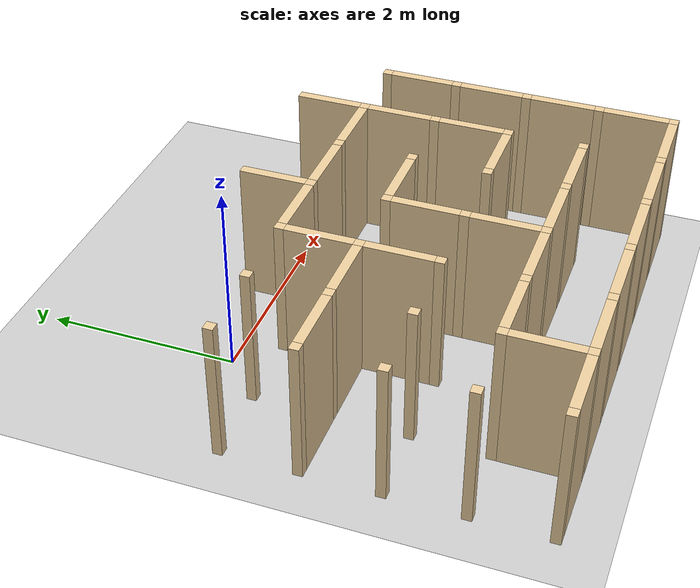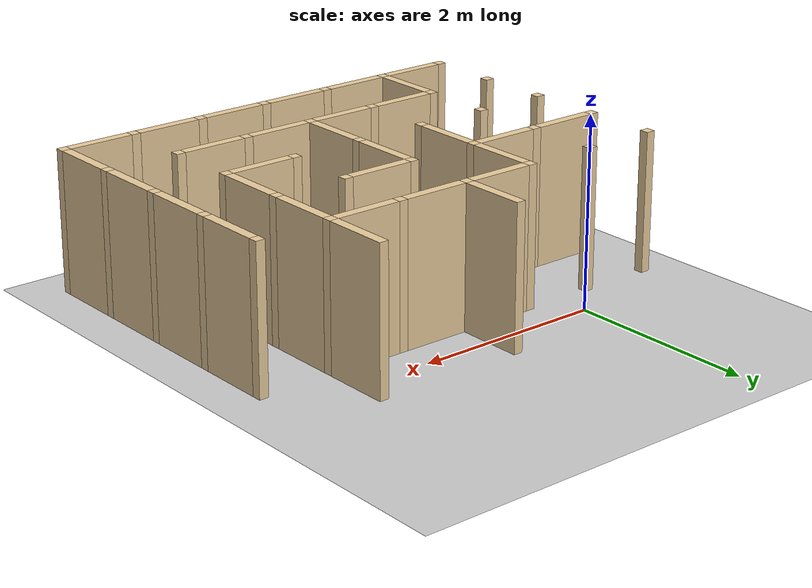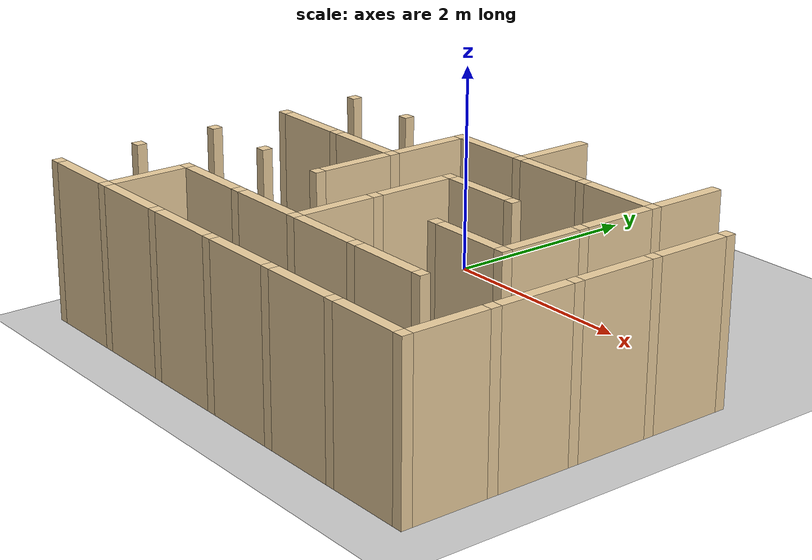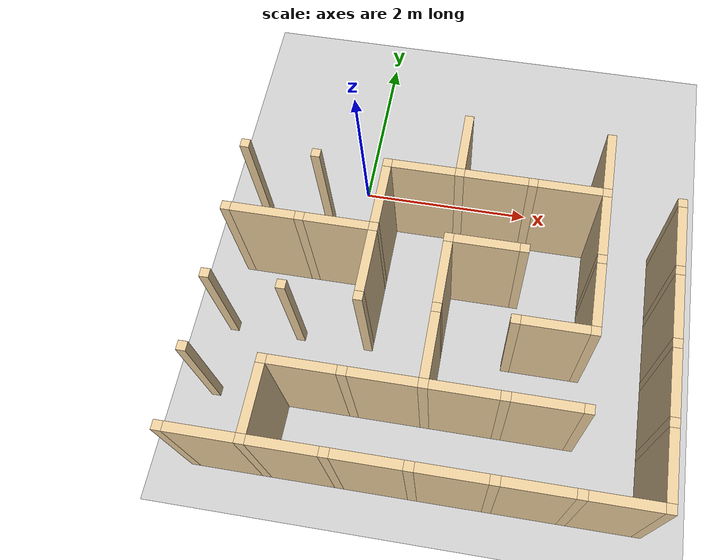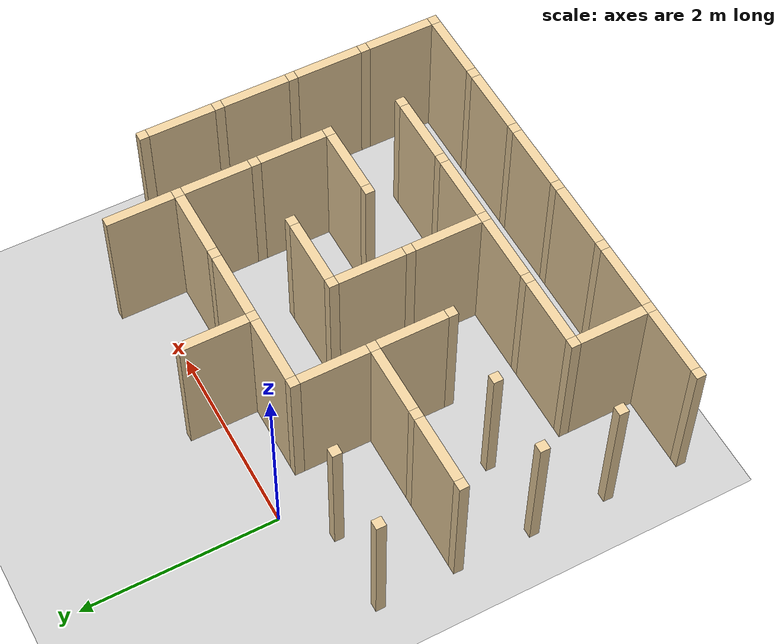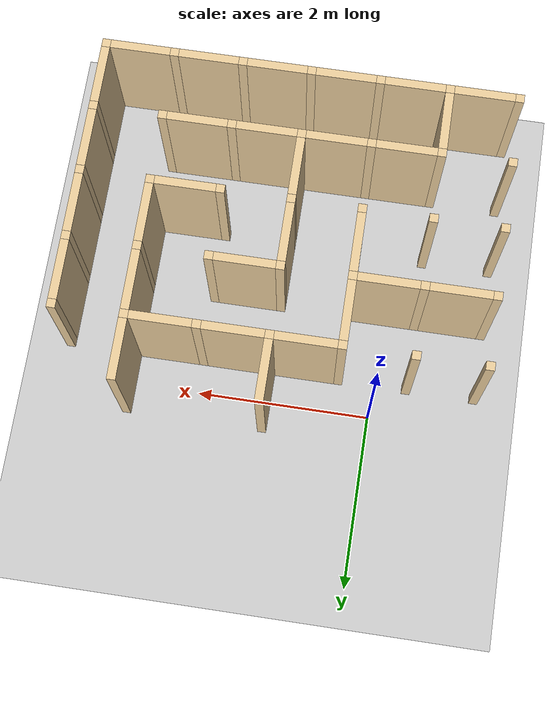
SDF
<sdf version="1.8">
 <world name="maze_world">
  <model name="ground_plane">
   <static>true</static>
   <link name="link">
    <collision name="collision">
     <geometry><plane><normal>0 0 1</normal><size>100 100</size></plane></geometry>
    </collision>
    <visual name="visual">
     <geometry><plane><normal>0 0 1</normal><size>100 100</size></plane></geometry>
     <material><ambient>0.8 0.8 0.8 1</ambient><diffuse>0.8 0.8 0.8 1</diffuse></material>
    </visual>
   </link>
  </model>
  <model name="maze">
   <link name="Wall_0_3_h">
    <collision name="Wall_0_3_h_c">
     <geometry><box><size>0.7 0.1 1.5</size></box></geometry>
     <pose>0 0 0.75 0 0 0</pose>
    </collision>
    <visual name="Wall_0_3_h_v">
     <pose>0 0 0.75 0 0 0</pose>
     <geometry><box><size>0.7 0.1 1.5</size></box></geometry>
     <material>
      <diffuse>0.921569 0.807843 0.615686 1</diffuse>
      <ambient>0.921569 0.807843 0.615686 1</ambient>
     </material>
    </visual>
    <pose>-0.8 -3.6 0 0 0 0</pose>
   </link>
   <link name="Wall_0_4_h">
    <collision name="Wall_0_4_h_c">
     <geometry><box><size>0.7 0.1 1.5</size></box></geometry>
     <pose>0 0 0.75 0 0 0</pose>
    </collision>
    <visual name="Wall_0_4_h_v">
     <pose>0 0 0.75 0 0 0</pose>
     <geometry><box><size>0.7 0.1 1.5</size></box></geometry>
     <material>
      <diffuse>0.921569 0.807843 0.615686 1</diffuse>
      <ambient>0.921569 0.807843 0.615686 1</ambient>
     </material>
    </visual>
    <pose>0.0 -3.6 0 0 0 0</pose>
   </link>
   <link name="Wall_0_5_h">
    <collision name="Wall_0_5_h_c">
     <geometry><box><size>0.7 0.1 1.5</size></box></geometry>
     <pose>0 0 0.75 0 0 0</pose>
    </collision>
    <visual name="Wall_0_5_h_v">
     <pose>0 0 0.75 0 0 0</pose>
     <geometry><box><size>0.7 0.1 1.5</size></box></geometry>
     <material>
      <diffuse>0.921569 0.807843 0.615686 1</diffuse>
      <ambient>0.921569 0.807843 0.615686 1</ambient>
     </material>
    </visual>
    <pose>0.8 -3.6 0 0 0 0</pose>
   </link>
   <link name="Wall_0_6_h">
    <collision name="Wall_0_6_h_c">
     <geometry><box><size>0.7 0.1 1.5</size></box></geometry>
     <pose>0 0 0.75 0 0 0</pose>
    </collision>
    <visual name="Wall_0_6_h_v">
     <pose>0 0 0.75 0 0 0</pose>
     <geometry><box><size>0.7 0.1 1.5</size></box></geometry>
     <material>
      <diffuse>0.921569 0.807843 0.615686 1</diffuse>
      <ambient>0.921569 0.807843 0.615686 1</ambient>
     </material>
    </visual>
    <pose>1.6 -3.6 0 0 0 0</pose>
   </link>
   <link name="Wall_0_7_h">
    <collision name="Wall_0_7_h_c">
     <geometry><box><size>0.7 0.1 1.5</size></box></geometry>
     <pose>0 0 0.75 0 0 0</pose>
    </collision>
    <visual name="Wall_0_7_h_v">
     <pose>0 0 0.75 0 0 0</pose>
     <geometry><box><size>0.7 0.1 1.5</size></box></geometry>
     <material>
      <diffuse>0.921569 0.807843 0.615686 1</diffuse>
      <ambient>0.921569 0.807843 0.615686 1</ambient>
     </material>
    </visual>
    <pose>2.4 -3.6 0 0 0 0</pose>
   </link>
   <link name="Wall_0_8_h">
    <collision name="Wall_0_8_h_c">
     <geometry><box><size>0.7 0.1 1.5</size></box></geometry>
     <pose>0 0 0.75 0 0 0</pose>
    </collision>
    <visual name="Wall_0_8_h_v">
     <pose>0 0 0.75 0 0 0</pose>
     <geometry><box><size>0.7 0.1 1.5</size></box></geometry>
     <material>
      <diffuse>0.921569 0.807843 0.615686 1</diffuse>
      <ambient>0.921569 0.807843 0.615686 1</ambient>
     </material>
    </visual>
    <pose>3.2 -3.6 0 0 0 0</pose>
   </link>
   <link name="Wall_1_4_h">
    <collision name="Wall_1_4_h_c">
     <geometry><box><size>0.7 0.1 1.5</size></box></geometry>
     <pose>0 0 0.75 0 0 0</pose>
    </collision>
    <visual name="Wall_1_4_h_v">
     <pose>0 0 0.75 0 0 0</pose>
     <geometry><box><size>0.7 0.1 1.5</size></box></geometry>
     <material>
      <diffuse>0.921569 0.807843 0.615686 1</diffuse>
      <ambient>0.921569 0.807843 0.615686 1</ambient>
     </material>
    </visual>
    <pose>0.0 -2.8 0 0 0 0</pose>
   </link>
   <link name="Wall_1_5_h">
    <collision name="Wall_1_5_h_c">
     <geometry><box><size>0.7 0.1 1.5</size></box></geometry>
     <pose>0 0 0.75 0 0 0</pose>
    </collision>
    <visual name="Wall_1_5_h_v">
     <pose>0 0 0.75 0 0 0</pose>
     <geometry><box><size>0.7 0.1 1.5</size></box></geometry>
     <material>
      <diffuse>0.921569 0.807843 0.615686 1</diffuse>
      <ambient>0.921569 0.807843 0.615686 1</ambient>
     </material>
    </visual>
    <pose>0.8 -2.8 0 0 0 0</pose>
   </link>
   <link name="Wall_1_6_h">
    <collision name="Wall_1_6_h_c">
     <geometry><box><size>0.7 0.1 1.5</size></box></geometry>
     <pose>0 0 0.75 0 0 0</pose>
    </collision>
    <visual name="Wall_1_6_h_v">
     <pose>0 0 0.75 0 0 0</pose>
     <geometry><box><size>0.7 0.1 1.5</size></box></geometry>
     <material>
      <diffuse>0.921569 0.807843 0.615686 1</diffuse>
      <ambient>0.921569 0.807843 0.615686 1</ambient>
     </material>
    </visual>
    <pose>1.6 -2.8 0 0 0 0</pose>
   </link>
   <link name="Wall_1_7_h">
    <collision name="Wall_1_7_h_c">
     <geometry><box><size>0.7 0.1 1.5</size></box></geometry>
     <pose>0 0 0.75 0 0 0</pose>
    </collision>
    <visual name="Wall_1_7_h_v">
     <pose>0 0 0.75 0 0 0</pose>
     <geometry><box><size>0.7 0.1 1.5</size></box></geometry>
     <material>
      <diffuse>0.921569 0.807843 0.615686 1</diffuse>
      <ambient>0.921569 0.807843 0.615686 1</ambient>
     </material>
    </visual>
    <pose>2.4 -2.8 0 0 0 0</pose>
   </link>
   <link name="Wall_2_7_h">
    <collision name="Wall_2_7_h_c">
     <geometry><box><size>0.7 0.1 1.5</size></box></geometry>
     <pose>0 0 0.75 0 0 0</pose>
    </collision>
    <visual name="Wall_2_7_h_v">
     <pose>0 0 0.75 0 0 0</pose>
     <geometry><box><size>0.7 0.1 1.5</size></box></geometry>
     <material>
      <diffuse>0.921569 0.807843 0.615686 1</diffuse>
      <ambient>0.921569 0.807843 0.615686 1</ambient>
     </material>
    </visual>
    <pose>2.4 -2.0 0 0 0 0</pose>
   </link>
   <link name="Wall_3_3_h">
    <collision name="Wall_3_3_h_c">
     <geometry><box><size>0.7 0.1 1.5</size></box></geometry>
     <pose>0 0 0.75 0 0 0</pose>
    </collision>
    <visual name="Wall_3_3_h_v">
     <pose>0 0 0.75 0 0 0</pose>
     <geometry><box><size>0.7 0.1 1.5</size></box></geometry>
     <material>
      <diffuse>0.921569 0.807843 0.615686 1</diffuse>
      <ambient>0.921569 0.807843 0.615686 1</ambient>
     </material>
    </visual>
    <pose>-0.8 -1.2 0 0 0 0</pose>
   </link>
   <link name="Wall_3_4_h">
    <collision name="Wall_3_4_h_c">
     <geometry><box><size>0.7 0.1 1.5</size></box></geometry>
     <pose>0 0 0.75 0 0 0</pose>
    </collision>
    <visual name="Wall_3_4_h_v">
     <pose>0 0 0.75 0 0 0</pose>
     <geometry><box><size>0.7 0.1 1.5</size></box></geometry>
     <material>
      <diffuse>0.921569 0.807843 0.615686 1</diffuse>
      <ambient>0.921569 0.807843 0.615686 1</ambient>
     </material>
    </visual>
    <pose>0.0 -1.2 0 0 0 0</pose>
   </link>
   <link name="Wall_3_6_h">
    <collision name="Wall_3_6_h_c">
     <geometry><box><size>0.7 0.1 1.5</size></box></geometry>
     <pose>0 0 0.75 0 0 0</pose>
    </collision>
    <visual name="Wall_3_6_h_v">
     <pose>0 0 0.75 0 0 0</pose>
     <geometry><box><size>0.7 0.1 1.5</size></box></geometry>
     <material>
      <diffuse>0.921569 0.807843 0.615686 1</diffuse>
      <ambient>0.921569 0.807843 0.615686 1</ambient>
     </material>
    </visual>
    <pose>1.6 -1.2 0 0 0 0</pose>
   </link>
   <link name="Wall_4_0_v">
    <collision name="Wall_4_0_v_c">
     <geometry><box><size>0.7 0.1 1.5</size></box></geometry>
     <pose>0 0 0.75 0 0 0</pose>
    </collision>
    <visual name="Wall_4_0_v_v">
     <pose>0 0 0.75 0 0 0</pose>
     <geometry><box><size>0.7 0.1 1.5</size></box></geometry>
     <material>
      <diffuse>0.921569 0.807843 0.615686 1</diffuse>
      <ambient>0.921569 0.807843 0.615686 1</ambient>
     </material>
    </visual>
    <pose>-0.4 -3.2 0 0 0 1.5708</pose>
   </link>
   <link name="Wall_4_5_h">
    <collision name="Wall_4_5_h_c">
     <geometry><box><size>0.7 0.1 1.5</size></box></geometry>
     <pose>0 0 0.75 0 0 0</pose>
    </collision>
    <visual name="Wall_4_5_h_v">
     <pose>0 0 0.75 0 0 0</pose>
     <geometry><box><size>0.7 0.1 1.5</size></box></geometry>
     <material>
      <diffuse>0.921569 0.807843 0.615686 1</diffuse>
      <ambient>0.921569 0.807843 0.615686 1</ambient>
     </material>
    </visual>
    <pose>0.8 -0.4 0 0 0 0</pose>
   </link>
   <link name="Wall_4_6_h">
    <collision name="Wall_4_6_h_c">
     <geometry><box><size>0.7 0.1 1.5</size></box></geometry>
     <pose>0 0 0.75 0 0 0</pose>
    </collision>
    <visual name="Wall_4_6_h_v">
     <pose>0 0 0.75 0 0 0</pose>
     <geometry><box><size>0.7 0.1 1.5</size></box></geometry>
     <material>
      <diffuse>0.921569 0.807843 0.615686 1</diffuse>
      <ambient>0.921569 0.807843 0.615686 1</ambient>
     </material>
    </visual>
    <pose>1.6 -0.4 0 0 0 0</pose>
   </link>
   <link name="Wall_4_7_h">
    <collision name="Wall_4_7_h_c">
     <geometry><box><size>0.7 0.1 1.5</size></box></geometry>
     <pose>0 0 0.75 0 0 0</pose>
    </collision>
    <visual name="Wall_4_7_h_v">
     <pose>0 0 0.75 0 0 0</pose>
     <geometry><box><size>0.7 0.1 1.5</size></box></geometry>
     <material>
      <diffuse>0.921569 0.807843 0.615686 1</diffuse>
      <ambient>0.921569 0.807843 0.615686 1</ambient>
     </material>
    </visual>
    <pose>2.4 -0.4 0 0 0 0</pose>
   </link>
   <link name="Wall_5_2_v">
    <collision name="Wall_5_2_v_c">
     <geometry><box><size>0.7 0.1 1.5</size></box></geometry>
     <pose>0 0 0.75 0 0 0</pose>
    </collision>
    <visual name="Wall_5_2_v_v">
     <pose>0 0 0.75 0 0 0</pose>
     <geometry><box><size>0.7 0.1 1.5</size></box></geometry>
     <material>
      <diffuse>0.921569 0.807843 0.615686 1</diffuse>
      <ambient>0.921569 0.807843 0.615686 1</ambient>
     </material>
    </visual>
    <pose>0.4 -1.6 0 0 0 1.5708</pose>
   </link>
   <link name="Wall_5_3_v">
    <collision name="Wall_5_3_v_c">
     <geometry><box><size>0.7 0.1 1.5</size></box></geometry>
     <pose>0 0 0.75 0 0 0</pose>
    </collision>
    <visual name="Wall_5_3_v_v">
     <pose>0 0 0.75 0 0 0</pose>
     <geometry><box><size>0.7 0.1 1.5</size></box></geometry>
     <material>
      <diffuse>0.921569 0.807843 0.615686 1</diffuse>
      <ambient>0.921569 0.807843 0.615686 1</ambient>
     </material>
    </visual>
    <pose>0.4 -0.8 0 0 0 1.5708</pose>
   </link>
   <link name="Wall_6_1_v">
    <collision name="Wall_6_1_v_c">
     <geometry><box><size>0.7 0.1 1.5</size></box></geometry>
     <pose>0 0 0.75 0 0 0</pose>
    </collision>
    <visual name="Wall_6_1_v_v">
     <pose>0 0 0.75 0 0 0</pose>
     <geometry><box><size>0.7 0.1 1.5</size></box></geometry>
     <material>
      <diffuse>0.921569 0.807843 0.615686 1</diffuse>
      <ambient>0.921569 0.807843 0.615686 1</ambient>
     </material>
    </visual>
    <pose>1.2 -2.4 0 0 0 1.5708</pose>
   </link>
   <link name="Wall_6_2_v">
    <collision name="Wall_6_2_v_c">
     <geometry><box><size>0.7 0.1 1.5</size></box></geometry>
     <pose>0 0 0.75 0 0 0</pose>
    </collision>
    <visual name="Wall_6_2_v_v">
     <pose>0 0 0.75 0 0 0</pose>
     <geometry><box><size>0.7 0.1 1.5</size></box></geometry>
     <material>
      <diffuse>0.921569 0.807843 0.615686 1</diffuse>
      <ambient>0.921569 0.807843 0.615686 1</ambient>
     </material>
    </visual>
    <pose>1.2 -1.6 0 0 0 1.5708</pose>
   </link>
   <link name="Wall_6_4_v">
    <collision name="Wall_6_4_v_c">
     <geometry><box><size>0.7 0.1 1.5</size></box></geometry>
     <pose>0 0 0.75 0 0 0</pose>
    </collision>
    <visual name="Wall_6_4_v_v">
     <pose>0 0 0.75 0 0 0</pose>
     <geometry><box><size>0.7 0.1 1.5</size></box></geometry>
     <material>
      <diffuse>0.921569 0.807843 0.615686 1</diffuse>
      <ambient>0.921569 0.807843 0.615686 1</ambient>
     </material>
    </visual>
    <pose>1.2 0.0 0 0 0 1.5708</pose>
   </link>
   <link name="Wall_8_2_v">
    <collision name="Wall_8_2_v_c">
     <geometry><box><size>0.7 0.1 1.5</size></box></geometry>
     <pose>0 0 0.75 0 0 0</pose>
    </collision>
    <visual name="Wall_8_2_v_v">
     <pose>0 0 0.75 0 0 0</pose>
     <geometry><box><size>0.7 0.1 1.5</size></box></geometry>
     <material>
      <diffuse>0.921569 0.807843 0.615686 1</diffuse>
      <ambient>0.921569 0.807843 0.615686 1</ambient>
     </material>
    </visual>
    <pose>2.8 -1.6 0 0 0 1.5708</pose>
   </link>
   <link name="Wall_8_3_v">
    <collision name="Wall_8_3_v_c">
     <geometry><box><size>0.7 0.1 1.5</size></box></geometry>
     <pose>0 0 0.75 0 0 0</pose>
    </collision>
    <visual name="Wall_8_3_v_v">
     <pose>0 0 0.75 0 0 0</pose>
     <geometry><box><size>0.7 0.1 1.5</size></box></geometry>
     <material>
      <diffuse>0.921569 0.807843 0.615686 1</diffuse>
      <ambient>0.921569 0.807843 0.615686 1</ambient>
     </material>
    </visual>
    <pose>2.8 -0.8 0 0 0 1.5708</pose>
   </link>
   <link name="Wall_8_4_v">
    <collision name="Wall_8_4_v_c">
     <geometry><box><size>0.7 0.1 1.5</size></box></geometry>
     <pose>0 0 0.75 0 0 0</pose>
    </collision>
    <visual name="Wall_8_4_v_v">
     <pose>0 0 0.75 0 0 0</pose>
     <geometry><box><size>0.7 0.1 1.5</size></box></geometry>
     <material>
      <diffuse>0.921569 0.807843 0.615686 1</diffuse>
      <ambient>0.921569 0.807843 0.615686 1</ambient>
     </material>
    </visual>
    <pose>2.8 0.0 0 0 0 1.5708</pose>
   </link>
   <link name="Wall_9_0_v">
    <collision name="Wall_9_0_v_c">
     <geometry><box><size>0.7 0.1 1.5</size></box></geometry>
     <pose>0 0 0.75 0 0 0</pose>
    </collision>
    <visual name="Wall_9_0_v_v">
     <pose>0 0 0.75 0 0 0</pose>
     <geometry><box><size>0.7 0.1 1.5</size></box></geometry>
     <material>
      <diffuse>0.921569 0.807843 0.615686 1</diffuse>
      <ambient>0.921569 0.807843 0.615686 1</ambient>
     </material>
    </visual>
    <pose>3.6 -3.2 0 0 0 1.5708</pose>
   </link>
   <link name="Wall_9_1_v">
    <collision name="Wall_9_1_v_c">
     <geometry><box><size>0.7 0.1 1.5</size></box></geometry>
     <pose>0 0 0.75 0 0 0</pose>
    </collision>
    <visual name="Wall_9_1_v_v">
     <pose>0 0 0.75 0 0 0</pose>
     <geometry><box><size>0.7 0.1 1.5</size></box></geometry>
     <material>
      <diffuse>0.921569 0.807843 0.615686 1</diffuse>
      <ambient>0.921569 0.807843 0.615686 1</ambient>
     </material>
    </visual>
    <pose>3.6 -2.4 0 0 0 1.5708</pose>
   </link>
   <link name="Wall_9_2_v">
    <collision name="Wall_9_2_v_c">
     <geometry><box><size>0.7 0.1 1.5</size></box></geometry>
     <pose>0 0 0.75 0 0 0</pose>
    </collision>
    <visual name="Wall_9_2_v_v">
     <pose>0 0 0.75 0 0 0</pose>
     <geometry><box><size>0.7 0.1 1.5</size></box></geometry>
     <material>
      <diffuse>0.921569 0.807843 0.615686 1</diffuse>
      <ambient>0.921569 0.807843 0.615686 1</ambient>
     </material>
    </visual>
    <pose>3.6 -1.6 0 0 0 1.5708</pose>
   </link>
   <link name="Wall_9_3_v">
    <collision name="Wall_9_3_v_c">
     <geometry><box><size>0.7 0.1 1.5</size></box></geometry>
     <pose>0 0 0.75 0 0 0</pose>
    </collision>
    <visual name="Wall_9_3_v_v">
     <pose>0 0 0.75 0 0 0</pose>
     <geometry><box><size>0.7 0.1 1.5</size></box></geometry>
     <material>
      <diffuse>0.921569 0.807843 0.615686 1</diffuse>
      <ambient>0.921569 0.807843 0.615686 1</ambient>
     </material>
    </visual>
    <pose>3.6 -0.8 0 0 0 1.5708</pose>
   </link>
   <link name="Joint_3_0">
    <collision name="Joint_3_0_c">
     <geometry><box><size>0.1 0.1 1.5</size></box></geometry>
     <pose>0 0 0.75 0 0 0</pose>
    </collision>
    <visual name="Joint_3_0_v">
     <pose>0 0 0.75 0 0 0</pose>
     <geometry><box><size>0.1 0.1 1.5</size></box></geometry>
     <material>
      <diffuse>0.921569 0.807843 0.615686 1</diffuse>
      <ambient>0.921569 0.807843 0.615686 1</ambient>
     </material>
    </visual>
    <pose>-1.2 -3.6 0 0 0 0</pose>
   </link>
   <link name="Joint_3_1">
    <collision name="Joint_3_1_c">
     <geometry><box><size>0.1 0.1 1.5</size></box></geometry>
     <pose>0 0 0.75 0 0 0</pose>
    </collision>
    <visual name="Joint_3_1_v">
     <pose>0 0 0.75 0 0 0</pose>
     <geometry><box><size>0.1 0.1 1.5</size></box></geometry>
     <material>
      <diffuse>0.921569 0.807843 0.615686 1</diffuse>
      <ambient>0.921569 0.807843 0.615686 1</ambient>
     </material>
    </visual>
    <pose>-1.2 -2.8 0 0 0 0</pose>
   </link>
   <link name="Joint_3_2">
    <collision name="Joint_3_2_c">
     <geometry><box><size>0.1 0.1 1.5</size></box></geometry>
     <pose>0 0 0.75 0 0 0</pose>
    </collision>
    <visual name="Joint_3_2_v">
     <pose>0 0 0.75 0 0 0</pose>
     <geometry><box><size>0.1 0.1 1.5</size></box></geometry>
     <material>
      <diffuse>0.921569 0.807843 0.615686 1</diffuse>
      <ambient>0.921569 0.807843 0.615686 1</ambient>
     </material>
    </visual>
    <pose>-1.2 -2.0 0 0 0 0</pose>
   </link>
   <link name="Joint_3_3">
    <collision name="Joint_3_3_c">
     <geometry><box><size>0.1 0.1 1.5</size></box></geometry>
     <pose>0 0 0.75 0 0 0</pose>
    </collision>
    <visual name="Joint_3_3_v">
     <pose>0 0 0.75 0 0 0</pose>
     <geometry><box><size>0.1 0.1 1.5</size></box></geometry>
     <material>
      <diffuse>0.921569 0.807843 0.615686 1</diffuse>
      <ambient>0.921569 0.807843 0.615686 1</ambient>
     </material>
    </visual>
    <pose>-1.2 -1.2 0 0 0 0</pose>
   </link>
   <link name="Joint_3_4">
    <collision name="Joint_3_4_c">
     <geometry><box><size>0.1 0.1 1.5</size></box></geometry>
     <pose>0 0 0.75 0 0 0</pose>
    </collision>
    <visual name="Joint_3_4_v">
     <pose>0 0 0.75 0 0 0</pose>
     <geometry><box><size>0.1 0.1 1.5</size></box></geometry>
     <material>
      <diffuse>0.921569 0.807843 0.615686 1</diffuse>
      <ambient>0.921569 0.807843 0.615686 1</ambient>
     </material>
    </visual>
    <pose>-1.2 -0.4 0 0 0 0</pose>
   </link>
   <link name="Joint_4_0">
    <collision name="Joint_4_0_c">
     <geometry><box><size>0.1 0.1 1.5</size></box></geometry>
     <pose>0 0 0.75 0 0 0</pose>
    </collision>
    <visual name="Joint_4_0_v">
     <pose>0 0 0.75 0 0 0</pose>
     <geometry><box><size>0.1 0.1 1.5</size></box></geometry>
     <material>
      <diffuse>0.921569 0.807843 0.615686 1</diffuse>
      <ambient>0.921569 0.807843 0.615686 1</ambient>
     </material>
    </visual>
    <pose>-0.4 -3.6 0 0 0 0</pose>
   </link>
   <link name="Joint_4_1">
    <collision name="Joint_4_1_c">
     <geometry><box><size>0.1 0.1 1.5</size></box></geometry>
     <pose>0 0 0.75 0 0 0</pose>
    </collision>
    <visual name="Joint_4_1_v">
     <pose>0 0 0.75 0 0 0</pose>
     <geometry><box><size>0.1 0.1 1.5</size></box></geometry>
     <material>
      <diffuse>0.921569 0.807843 0.615686 1</diffuse>
      <ambient>0.921569 0.807843 0.615686 1</ambient>
     </material>
    </visual>
    <pose>-0.4 -2.8 0 0 0 0</pose>
   </link>
   <link name="Joint_4_2">
    <collision name="Joint_4_2_c">
     <geometry><box><size>0.1 0.1 1.5</size></box></geometry>
     <pose>0 0 0.75 0 0 0</pose>
    </collision>
    <visual name="Joint_4_2_v">
     <pose>0 0 0.75 0 0 0</pose>
     <geometry><box><size>0.1 0.1 1.5</size></box></geometry>
     <material>
      <diffuse>0.921569 0.807843 0.615686 1</diffuse>
      <ambient>0.921569 0.807843 0.615686 1</ambient>
     </material>
    </visual>
    <pose>-0.4 -2.0 0 0 0 0</pose>
   </link>
   <link name="Joint_4_3">
    <collision name="Joint_4_3_c">
     <geometry><box><size>0.1 0.1 1.5</size></box></geometry>
     <pose>0 0 0.75 0 0 0</pose>
    </collision>
    <visual name="Joint_4_3_v">
     <pose>0 0 0.75 0 0 0</pose>
     <geometry><box><size>0.1 0.1 1.5</size></box></geometry>
     <material>
      <diffuse>0.921569 0.807843 0.615686 1</diffuse>
      <ambient>0.921569 0.807843 0.615686 1</ambient>
     </material>
    </visual>
    <pose>-0.4 -1.2 0 0 0 0</pose>
   </link>
   <link name="Joint_4_4">
    <collision name="Joint_4_4_c">
     <geometry><box><size>0.1 0.1 1.5</size></box></geometry>
     <pose>0 0 0.75 0 0 0</pose>
    </collision>
    <visual name="Joint_4_4_v">
     <pose>0 0 0.75 0 0 0</pose>
     <geometry><box><size>0.1 0.1 1.5</size></box></geometry>
     <material>
      <diffuse>0.921569 0.807843 0.615686 1</diffuse>
      <ambient>0.921569 0.807843 0.615686 1</ambient>
     </material>
    </visual>
    <pose>-0.4 -0.4 0 0 0 0</pose>
   </link>
   <link name="Joint_5_0">
    <collision name="Joint_5_0_c">
     <geometry><box><size>0.1 0.1 1.5</size></box></geometry>
     <pose>0 0 0.75 0 0 0</pose>
    </collision>
    <visual name="Joint_5_0_v">
     <pose>0 0 0.75 0 0 0</pose>
     <geometry><box><size>0.1 0.1 1.5</size></box></geometry>
     <material>
      <diffuse>0.921569 0.807843 0.615686 1</diffuse>
      <ambient>0.921569 0.807843 0.615686 1</ambient>
     </material>
    </visual>
    <pose>0.4 -3.6 0 0 0 0</pose>
   </link>
   <link name="Joint_5_1">
    <collision name="Joint_5_1_c">
     <geometry><box><size>0.1 0.1 1.5</size></box></geometry>
     <pose>0 0 0.75 0 0 0</pose>
    </collision>
    <visual name="Joint_5_1_v">
     <pose>0 0 0.75 0 0 0</pose>
     <geometry><box><size>0.1 0.1 1.5</size></box></geometry>
     <material>
      <diffuse>0.921569 0.807843 0.615686 1</diffuse>
      <ambient>0.921569 0.807843 0.615686 1</ambient>
     </material>
    </visual>
    <pose>0.4 -2.8 0 0 0 0</pose>
   </link>
   <link name="Joint_5_2">
    <collision name="Joint_5_2_c">
     <geometry><box><size>0.1 0.1 1.5</size></box></geometry>
     <pose>0 0 0.75 0 0 0</pose>
    </collision>
    <visual name="Joint_5_2_v">
     <pose>0 0 0.75 0 0 0</pose>
     <geometry><box><size>0.1 0.1 1.5</size></box></geometry>
     <material>
      <diffuse>0.921569 0.807843 0.615686 1</diffuse>
      <ambient>0.921569 0.807843 0.615686 1</ambient>
     </material>
    </visual>
    <pose>0.4 -2.0 0 0 0 0</pose>
   </link>
   <link name="Joint_5_3">
    <collision name="Joint_5_3_c">
     <geometry><box><size>0.1 0.1 1.5</size></box></geometry>
     <pose>0 0 0.75 0 0 0</pose>
    </collision>
    <visual name="Joint_5_3_v">
     <pose>0 0 0.75 0 0 0</pose>
     <geometry><box><size>0.1 0.1 1.5</size></box></geometry>
     <material>
      <diffuse>0.921569 0.807843 0.615686 1</diffuse>
      <ambient>0.921569 0.807843 0.615686 1</ambient>
     </material>
    </visual>
    <pose>0.4 -1.2 0 0 0 0</pose>
   </link>
   <link name="Joint_5_4">
    <collision name="Joint_5_4_c">
     <geometry><box><size>0.1 0.1 1.5</size></box></geometry>
     <pose>0 0 0.75 0 0 0</pose>
    </collision>
    <visual name="Joint_5_4_v">
     <pose>0 0 0.75 0 0 0</pose>
     <geometry><box><size>0.1 0.1 1.5</size></box></geometry>
     <material>
      <diffuse>0.921569 0.807843 0.615686 1</diffuse>
      <ambient>0.921569 0.807843 0.615686 1</ambient>
     </material>
    </visual>
    <pose>0.4 -0.4 0 0 0 0</pose>
   </link>
   <link name="Joint_6_0">
    <collision name="Joint_6_0_c">
     <geometry><box><size>0.1 0.1 1.5</size></box></geometry>
     <pose>0 0 0.75 0 0 0</pose>
    </collision>
    <visual name="Joint_6_0_v">
     <pose>0 0 0.75 0 0 0</pose>
     <geometry><box><size>0.1 0.1 1.5</size></box></geometry>
     <material>
      <diffuse>0.921569 0.807843 0.615686 1</diffuse>
      <ambient>0.921569 0.807843 0.615686 1</ambient>
     </material>
    </visual>
    <pose>1.2 -3.6 0 0 0 0</pose>
   </link>
   <link name="Joint_6_1">
    <collision name="Joint_6_1_c">
     <geometry><box><size>0.1 0.1 1.5</size></box></geometry>
     <pose>0 0 0.75 0 0 0</pose>
    </collision>
    <visual name="Joint_6_1_v">
     <pose>0 0 0.75 0 0 0</pose>
     <geometry><box><size>0.1 0.1 1.5</size></box></geometry>
     <material>
      <diffuse>0.921569 0.807843 0.615686 1</diffuse>
      <ambient>0.921569 0.807843 0.615686 1</ambient>
     </material>
    </visual>
    <pose>1.2 -2.8 0 0 0 0</pose>
   </link>
   <link name="Joint_6_2">
    <collision name="Joint_6_2_c">
     <geometry><box><size>0.1 0.1 1.5</size></box></geometry>
     <pose>0 0 0.75 0 0 0</pose>
    </collision>
    <visual name="Joint_6_2_v">
     <pose>0 0 0.75 0 0 0</pose>
     <geometry><box><size>0.1 0.1 1.5</size></box></geometry>
     <material>
      <diffuse>0.921569 0.807843 0.615686 1</diffuse>
      <ambient>0.921569 0.807843 0.615686 1</ambient>
     </material>
    </visual>
    <pose>1.2 -2.0 0 0 0 0</pose>
   </link>
   <link name="Joint_6_3">
    <collision name="Joint_6_3_c">
     <geometry><box><size>0.1 0.1 1.5</size></box></geometry>
     <pose>0 0 0.75 0 0 0</pose>
    </collision>
    <visual name="Joint_6_3_v">
     <pose>0 0 0.75 0 0 0</pose>
     <geometry><box><size>0.1 0.1 1.5</size></box></geometry>
     <material>
      <diffuse>0.921569 0.807843 0.615686 1</diffuse>
      <ambient>0.921569 0.807843 0.615686 1</ambient>
     </material>
    </visual>
    <pose>1.2 -1.2 0 0 0 0</pose>
   </link>
   <link name="Joint_6_4">
    <collision name="Joint_6_4_c">
     <geometry><box><size>0.1 0.1 1.5</size></box></geometry>
     <pose>0 0 0.75 0 0 0</pose>
    </collision>
    <visual name="Joint_6_4_v">
     <pose>0 0 0.75 0 0 0</pose>
     <geometry><box><size>0.1 0.1 1.5</size></box></geometry>
     <material>
      <diffuse>0.921569 0.807843 0.615686 1</diffuse>
      <ambient>0.921569 0.807843 0.615686 1</ambient>
     </material>
    </visual>
    <pose>1.2 -0.4 0 0 0 0</pose>
   </link>
   <link name="Joint_7_0">
    <collision name="Joint_7_0_c">
     <geometry><box><size>0.1 0.1 1.5</size></box></geometry>
     <pose>0 0 0.75 0 0 0</pose>
    </collision>
    <visual name="Joint_7_0_v">
     <pose>0 0 0.75 0 0 0</pose>
     <geometry><box><size>0.1 0.1 1.5</size></box></geometry>
     <material>
      <diffuse>0.921569 0.807843 0.615686 1</diffuse>
      <ambient>0.921569 0.807843 0.615686 1</ambient>
     </material>
    </visual>
    <pose>2.0 -3.6 0 0 0 0</pose>
   </link>
   <link name="Joint_7_1">
    <collision name="Joint_7_1_c">
     <geometry><box><size>0.1 0.1 1.5</size></box></geometry>
     <pose>0 0 0.75 0 0 0</pose>
    </collision>
    <visual name="Joint_7_1_v">
     <pose>0 0 0.75 0 0 0</pose>
     <geometry><box><size>0.1 0.1 1.5</size></box></geometry>
     <material>
      <diffuse>0.921569 0.807843 0.615686 1</diffuse>
      <ambient>0.921569 0.807843 0.615686 1</ambient>
     </material>
    </visual>
    <pose>2.0 -2.8 0 0 0 0</pose>
   </link>
   <link name="Joint_7_2">
    <collision name="Joint_7_2_c">
     <geometry><box><size>0.1 0.1 1.5</size></box></geometry>
     <pose>0 0 0.75 0 0 0</pose>
    </collision>
    <visual name="Joint_7_2_v">
     <pose>0 0 0.75 0 0 0</pose>
     <geometry><box><size>0.1 0.1 1.5</size></box></geometry>
     <material>
      <diffuse>0.921569 0.807843 0.615686 1</diffuse>
      <ambient>0.921569 0.807843 0.615686 1</ambient>
     </material>
    </visual>
    <pose>2.0 -2.0 0 0 0 0</pose>
   </link>
   <link name="Joint_7_3">
    <collision name="Joint_7_3_c">
     <geometry><box><size>0.1 0.1 1.5</size></box></geometry>
     <pose>0 0 0.75 0 0 0</pose>
    </collision>
    <visual name="Joint_7_3_v">
     <pose>0 0 0.75 0 0 0</pose>
     <geometry><box><size>0.1 0.1 1.5</size></box></geometry>
     <material>
      <diffuse>0.921569 0.807843 0.615686 1</diffuse>
      <ambient>0.921569 0.807843 0.615686 1</ambient>
     </material>
    </visual>
    <pose>2.0 -1.2 0 0 0 0</pose>
   </link>
   <link name="Joint_7_4">
    <collision name="Joint_7_4_c">
     <geometry><box><size>0.1 0.1 1.5</size></box></geometry>
     <pose>0 0 0.75 0 0 0</pose>
    </collision>
    <visual name="Joint_7_4_v">
     <pose>0 0 0.75 0 0 0</pose>
     <geometry><box><size>0.1 0.1 1.5</size></box></geometry>
     <material>
      <diffuse>0.921569 0.807843 0.615686 1</diffuse>
      <ambient>0.921569 0.807843 0.615686 1</ambient>
     </material>
    </visual>
    <pose>2.0 -0.4 0 0 0 0</pose>
   </link>
   <link name="Joint_8_0">
    <collision name="Joint_8_0_c">
     <geometry><box><size>0.1 0.1 1.5</size></box></geometry>
     <pose>0 0 0.75 0 0 0</pose>
    </collision>
    <visual name="Joint_8_0_v">
     <pose>0 0 0.75 0 0 0</pose>
     <geometry><box><size>0.1 0.1 1.5</size></box></geometry>
     <material>
      <diffuse>0.921569 0.807843 0.615686 1</diffuse>
      <ambient>0.921569 0.807843 0.615686 1</ambient>
     </material>
    </visual>
    <pose>2.8 -3.6 0 0 0 0</pose>
   </link>
   <link name="Joint_8_1">
    <collision name="Joint_8_1_c">
     <geometry><box><size>0.1 0.1 1.5</size></box></geometry>
     <pose>0 0 0.75 0 0 0</pose>
    </collision>
    <visual name="Joint_8_1_v">
     <pose>0 0 0.75 0 0 0</pose>
     <geometry><box><size>0.1 0.1 1.5</size></box></geometry>
     <material>
      <diffuse>0.921569 0.807843 0.615686 1</diffuse>
      <ambient>0.921569 0.807843 0.615686 1</ambient>
     </material>
    </visual>
    <pose>2.8 -2.8 0 0 0 0</pose>
   </link>
   <link name="Joint_8_2">
    <collision name="Joint_8_2_c">
     <geometry><box><size>0.1 0.1 1.5</size></box></geometry>
     <pose>0 0 0.75 0 0 0</pose>
    </collision>
    <visual name="Joint_8_2_v">
     <pose>0 0 0.75 0 0 0</pose>
     <geometry><box><size>0.1 0.1 1.5</size></box></geometry>
     <material>
      <diffuse>0.921569 0.807843 0.615686 1</diffuse>
      <ambient>0.921569 0.807843 0.615686 1</ambient>
     </material>
    </visual>
    <pose>2.8 -2.0 0 0 0 0</pose>
   </link>
   <link name="Joint_8_3">
    <collision name="Joint_8_3_c">
     <geometry><box><size>0.1 0.1 1.5</size></box></geometry>
     <pose>0 0 0.75 0 0 0</pose>
    </collision>
    <visual name="Joint_8_3_v">
     <pose>0 0 0.75 0 0 0</pose>
     <geometry><box><size>0.1 0.1 1.5</size></box></geometry>
     <material>
      <diffuse>0.921569 0.807843 0.615686 1</diffuse>
      <ambient>0.921569 0.807843 0.615686 1</ambient>
     </material>
    </visual>
    <pose>2.8 -1.2 0 0 0 0</pose>
   </link>
   <link name="Joint_8_4">
    <collision name="Joint_8_4_c">
     <geometry><box><size>0.1 0.1 1.5</size></box></geometry>
     <pose>0 0 0.75 0 0 0</pose>
    </collision>
    <visual name="Joint_8_4_v">
     <pose>0 0 0.75 0 0 0</pose>
     <geometry><box><size>0.1 0.1 1.5</size></box></geometry>
     <material>
      <diffuse>0.921569 0.807843 0.615686 1</diffuse>
      <ambient>0.921569 0.807843 0.615686 1</ambient>
     </material>
    </visual>
    <pose>2.8 -0.4 0 0 0 0</pose>
   </link>
   <link name="Joint_9_0">
    <collision name="Joint_9_0_c">
     <geometry><box><size>0.1 0.1 1.5</size></box></geometry>
     <pose>0 0 0.75 0 0 0</pose>
    </collision>
    <visual name="Joint_9_0_v">
     <pose>0 0 0.75 0 0 0</pose>
     <geometry><box><size>0.1 0.1 1.5</size></box></geometry>
     <material>
      <diffuse>0.921569 0.807843 0.615686 1</diffuse>
      <ambient>0.921569 0.807843 0.615686 1</ambient>
     </material>
    </visual>
    <pose>3.6 -3.6 0 0 0 0</pose>
   </link>
   <link name="Joint_9_1">
    <collision name="Joint_9_1_c">
     <geometry><box><size>0.1 0.1 1.5</size></box></geometry>
     <pose>0 0 0.75 0 0 0</pose>
    </collision>
    <visual name="Joint_9_1_v">
     <pose>0 0 0.75 0 0 0</pose>
     <geometry><box><size>0.1 0.1 1.5</size></box></geometry>
     <material>
      <diffuse>0.921569 0.807843 0.615686 1</diffuse>
      <ambient>0.921569 0.807843 0.615686 1</ambient>
     </material>
    </visual>
    <pose>3.6 -2.8 0 0 0 0</pose>
   </link>
   <link name="Joint_9_2">
    <collision name="Joint_9_2_c">
     <geometry><box><size>0.1 0.1 1.5</size></box></geometry>
     <pose>0 0 0.75 0 0 0</pose>
    </collision>
    <visual name="Joint_9_2_v">
     <pose>0 0 0.75 0 0 0</pose>
     <geometry><box><size>0.1 0.1 1.5</size></box></geometry>
     <material>
      <diffuse>0.921569 0.807843 0.615686 1</diffuse>
      <ambient>0.921569 0.807843 0.615686 1</ambient>
     </material>
    </visual>
    <pose>3.6 -2.0 0 0 0 0</pose>
   </link>
   <link name="Joint_9_3">
    <collision name="Joint_9_3_c">
     <geometry><box><size>0.1 0.1 1.5</size></box></geometry>
     <pose>0 0 0.75 0 0 0</pose>
    </collision>
    <visual name="Joint_9_3_v">
     <pose>0 0 0.75 0 0 0</pose>
     <geometry><box><size>0.1 0.1 1.5</size></box></geometry>
     <material>
      <diffuse>0.921569 0.807843 0.615686 1</diffuse>
      <ambient>0.921569 0.807843 0.615686 1</ambient>
     </material>
    </visual>
    <pose>3.6 -1.2 0 0 0 0</pose>
   </link>
   <link name="Joint_9_4">
    <collision name="Joint_9_4_c">
     <geometry><box><size>0.1 0.1 1.5</size></box></geometry>
     <pose>0 0 0.75 0 0 0</pose>
    </collision>
    <visual name="Joint_9_4_v">
     <pose>0 0 0.75 0 0 0</pose>
     <geometry><box><size>0.1 0.1 1.5</size></box></geometry>
     <material>
      <diffuse>0.921569 0.807843 0.615686 1</diffuse>
      <ambient>0.921569 0.807843 0.615686 1</ambient>
     </material>
    </visual>
    <pose>3.6 -0.4 0 0 0 0</pose>
   </link>
   <static>1</static>
  </model>
 </world>
</sdf>
